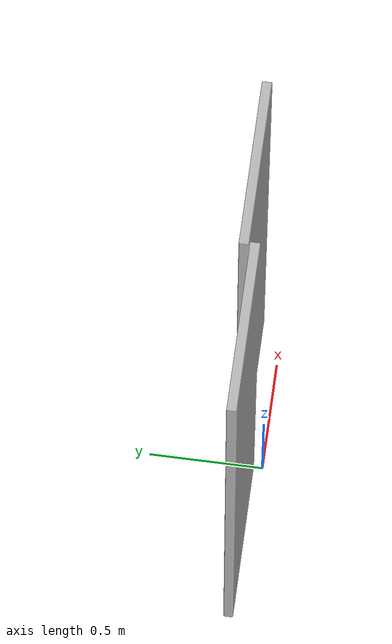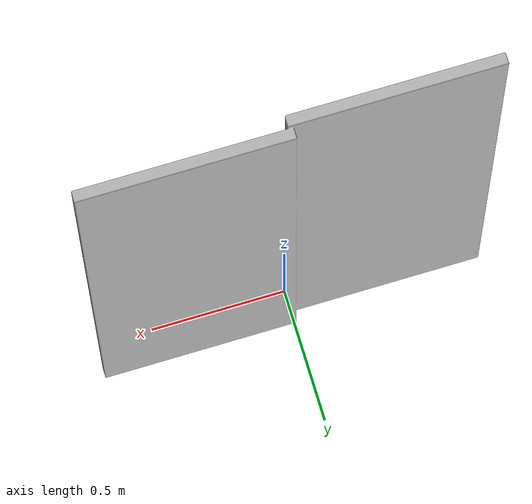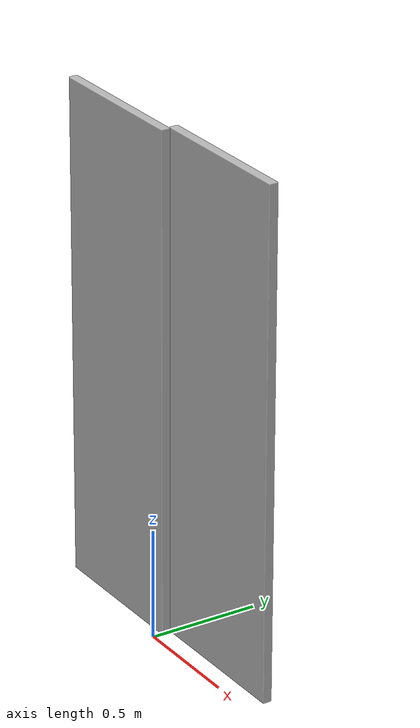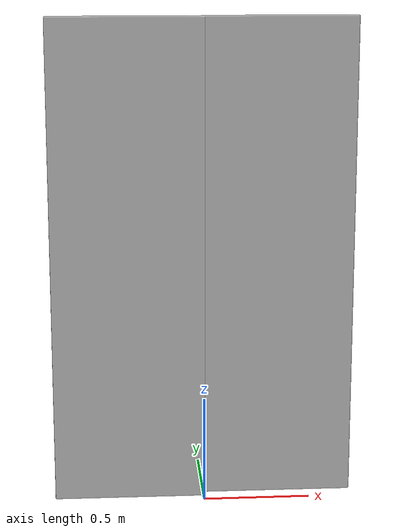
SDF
<?xml version="1.0" ?>
<sdf version="1.6">
  <model name="aws_robomaker_hospital_elevator_01_door">
    <link name="link">
      <visual name="visual">
        <geometry>
          <mesh>
            <uri>model://aws_robomaker_hospital_elevator_01_door/meshes/aws_robomaker_hospital_elevator_01_door_visual.dae</uri>
          </mesh>
        </geometry>
      </visual>
      <collision name="collision">
        <geometry>
          <mesh>
            <uri>model://aws_robomaker_hospital_elevator_01_door/meshes/aws_robomaker_hospital_elevator_01_door_collision.dae</uri>
          </mesh>
        </geometry>
      </collision>
    </link>
    <static>1</static>
  </model>
</sdf>
